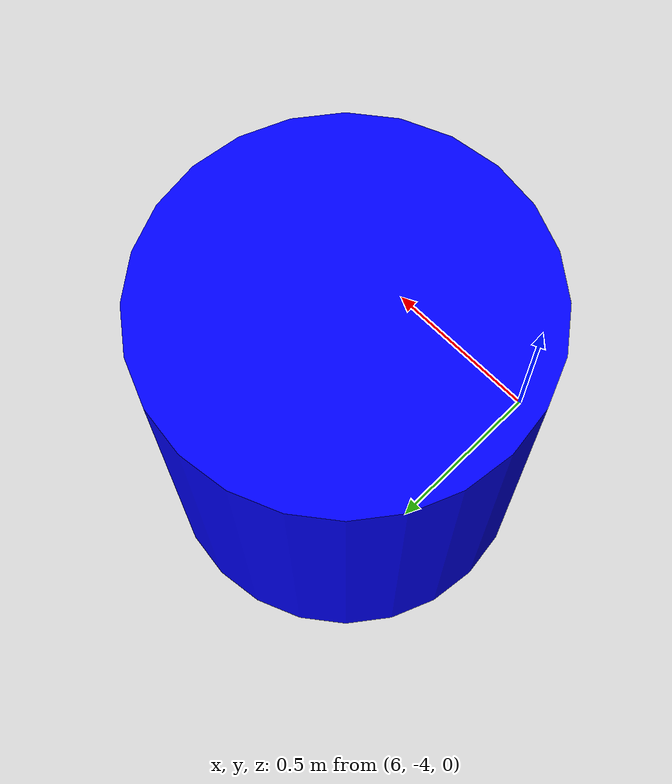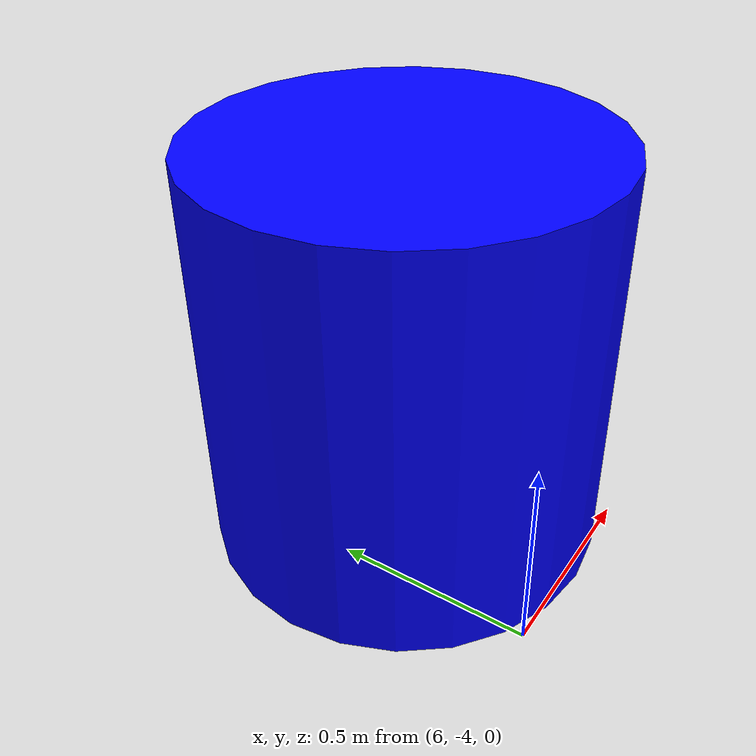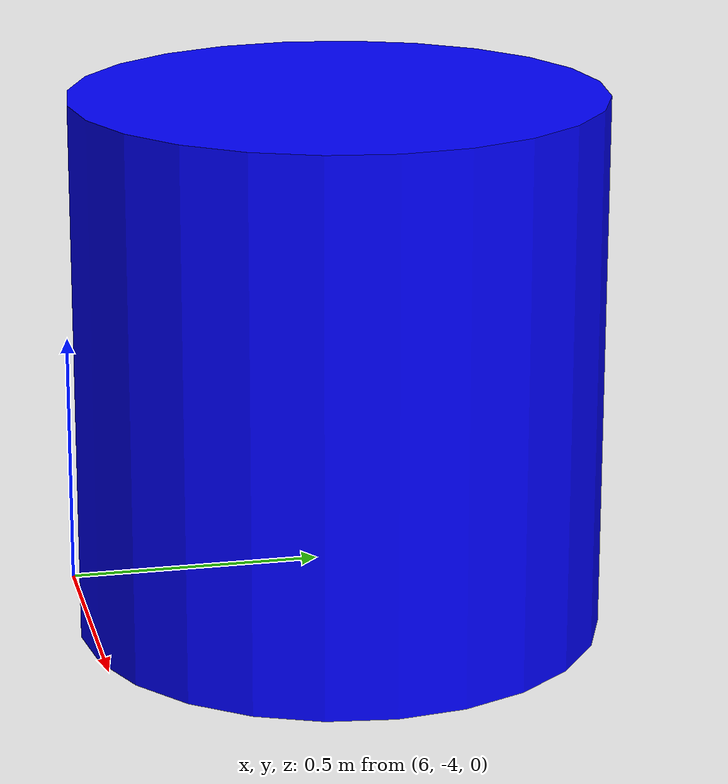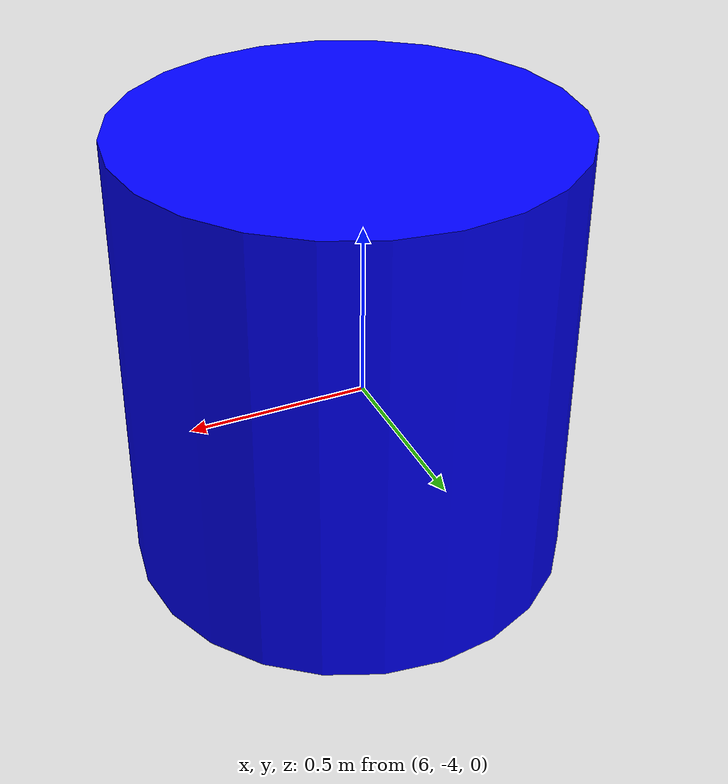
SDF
<sdf version='1.6'>
    <model name='cyl_6'>
      <pose>6.26 -3.51 0.5 0 -0 0</pose>
      <link name='cylinder_link'>
        <inertial>
          <inertia>
            <ixx>0.14580000000000001</ixx>
            <ixy>0</ixy>
            <ixz>0</ixz>
            <iyy>0.14580000000000001</iyy>
            <iyz>0</iyz>
            <izz>0.125</izz>
          </inertia>
          <mass>1</mass>
          <pose>0 0 0 0 -0 0</pose>
        </inertial>
        <collision name='cylinder_collision'>
          <geometry>
            <cylinder>
              <radius>0.51</radius>
              <length>1.05</length>
            </cylinder>
          </geometry>
          <surface>
            <friction>
              <ode/>
            </friction>
            <bounce/>
            <contact/>
          </surface>
        </collision>
        <visual name='cylinder_visual'>
          <geometry>
            <cylinder>
              <radius>0.51</radius>
              <length>1.05</length>
            </cylinder>
          </geometry>
          <material>
            <ambient>0 0 1 1</ambient>
            <diffuse>0 0 1 1</diffuse>
            <specular>0 0 1 1</specular>
          </material>
        </visual>
        <pose>0 0 0 0 -0 0</pose>
        <enable_wind>false</enable_wind>
      </link>
      <static>false</static>
      <self_collide>false</self_collide>
    </model>
    </sdf>
